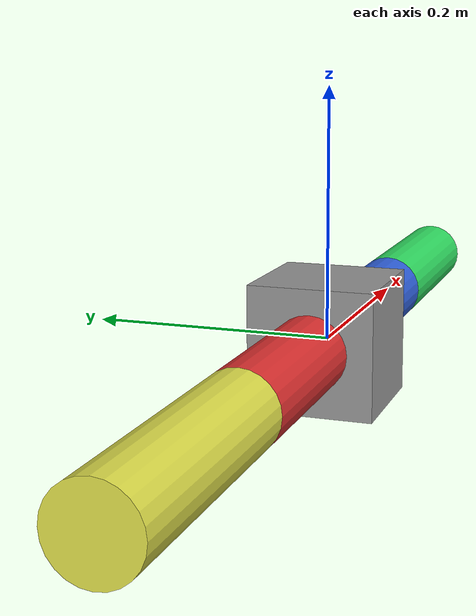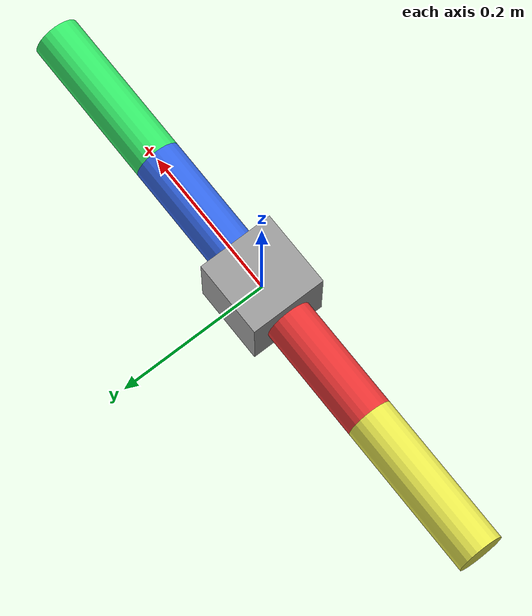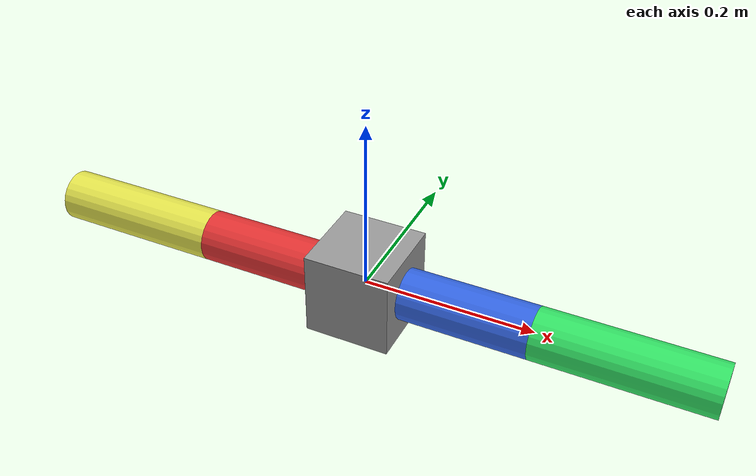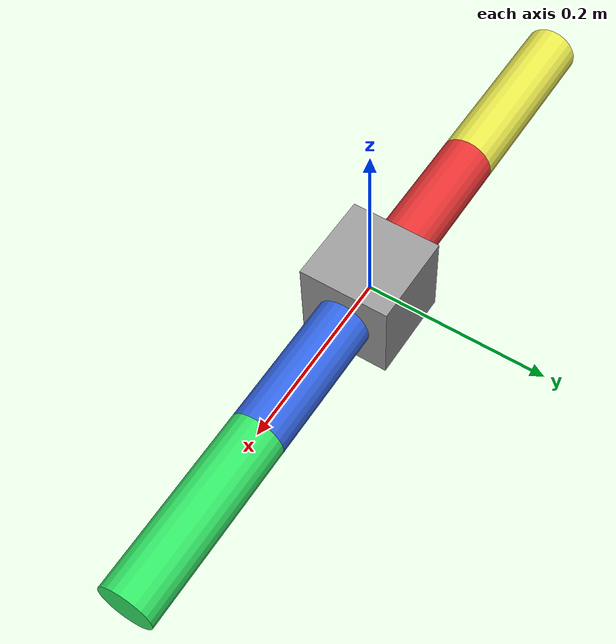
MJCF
<mujoco model="hybrid_robot">
    <compiler angle="radian"/>
    <option gravity="0 0 0"/>

    <worldbody>
        <!-- ================= BASE ================= -->
        <body name="base_link" pos="0 0 0">
            <inertial pos="0 0 0"
                      mass="5.0"
                      diaginertia="0.05 0.05 0.05"/>

            <!-- FREE-FLOATING BASE: 6 DOF -->
            <joint name="base_free" type="free"/>

            <geom name="base_geom"
                  type="box"
                  size="0.05 0.05 0.05"
                  rgba="0.6 0.6 0.6 1"/>

            <!-- ================= ARM 1 ================= -->
            <body name="link1" pos="0 0 0">
                <inertial pos="0 0 0"
                          mass="1.0"
                          diaginertia="0.005 0.005 0.005"/>

                <joint name="joint1"
                       type="hinge"
                       axis="0 0 1"
                       range="-3.14 3.14"
                       limited="true"/>

                <geom name="link1_geom"
                      type="cylinder"
                      size="0.03 0.1"
                      pos="0.1 0 0"
                      zaxis="1 0 0"
                      rgba="0.2 0.4 0.9 1"/>

                <body name="link2" pos="0.2 0 0">
                    <inertial pos="0 0 0"
                              mass="1.0"
                              diaginertia="0.005 0.005 0.005"/>

                    <joint name="joint2"
                           type="hinge"
                           axis="0 0 1"
                           range="-3.14 3.14"
                           limited="true"/>

                    <geom name="link2_geom"
                          type="cylinder"
                          size="0.03 0.1"
                          pos="0.1 0 0"
                          zaxis="1 0 0"
                          rgba="0.2 0.9 0.4 1"/>
                </body>
            </body>

            <!-- ================= ARM 2 ================= -->
            <body name="link3" pos="0 0 0">
                <inertial pos="0 0 0"
                          mass="1.0"
                          diaginertia="0.005 0.005 0.005"/>

                <joint name="joint3"
                       type="hinge"
                       axis="0 0 1"
                       range="-3.14 3.14"
                       limited="true"/>

                <geom name="link3_geom"
                      type="cylinder"
                      size="0.03 0.1"
                      pos="-0.1 0 0"
                      zaxis="-1 0 0"
                      rgba="0.9 0.2 0.2 1"/>

                <body name="link4" pos="-0.2 0 0">
                    <inertial pos="0 0 0"
                              mass="1.0"
                              diaginertia="0.005 0.005 0.005"/>

                    <joint name="joint4"
                           type="hinge"
                           axis="0 0 1"
                           range="-3.14 3.14"
                           limited="true"/>

                    <geom name="link4_geom"
                          type="cylinder"
                          size="0.03 0.1"
                          pos="-0.1 0 0"
                          zaxis="-1 0 0"
                          rgba="0.9 0.9 0.3 1"/>
                </body>
            </body>
        </body>
    </worldbody>

    <!-- ================= ACTUATORS ================= -->
    <actuator>
        <!-- ONLY MANIPULATOR ACTUATION -->
        <velocity name="vel1" joint="joint1" kv="3" ctrlrange="-50 50"/>
        <velocity name="vel2" joint="joint2" kv="3" ctrlrange="-50 50"/>
        <velocity name="vel3" joint="joint3" kv="3" ctrlrange="-50 50"/>
        <velocity name="vel4" joint="joint4" kv="3" ctrlrange="-50 50"/>
    </actuator>

</mujoco>
